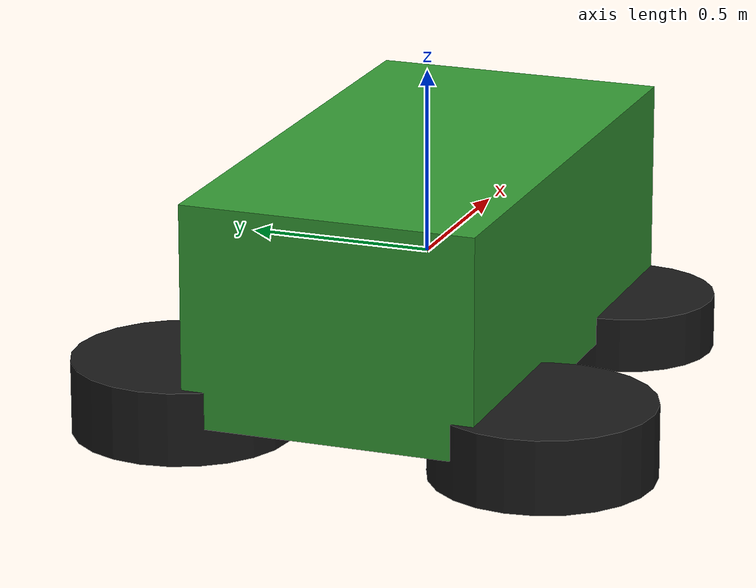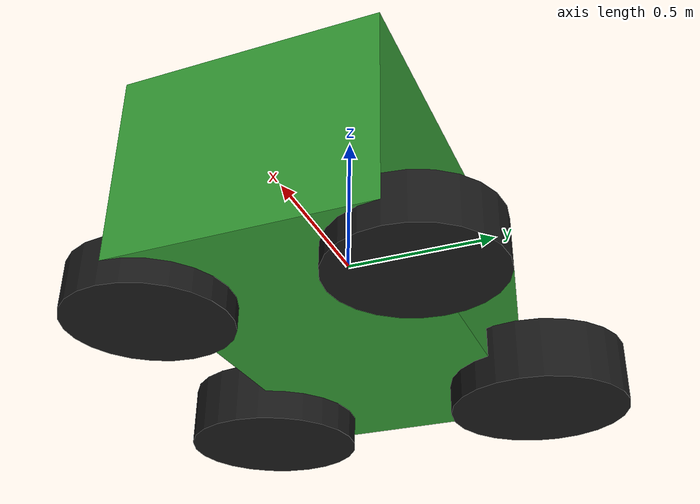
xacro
<?xml version="1.0"?>
<robot name="agri_robot" xmlns:xacro="http://ros.org/wiki/xacro">

  <!-- BASE LINK (Main body) -->
  <link name="base_link">
    <inertial>
      <mass value="50.0"/>
      <inertia ixx="4.167" ixy="0" ixz="0" iyy="7.5" iyz="0" izz="9.375"/>
    </inertial>

    <visual>
      <geometry>
        <box size="1.5 0.8 0.6"/>
      </geometry>
      <material name="green">
        <color rgba="0.2 0.6 0.2 1"/>
      </material>
    </visual>

    <collision>
      <geometry>
        <box size="1.5 0.8 0.6"/>
      </geometry>
    </collision>
  </link>

  <!-- REAR LEFT WHEEL -->
  <link name="rear_left_wheel">
    <inertial>
      <mass value="5.0"/>
      <inertia ixx="0.1125" ixy="0" ixz="0" iyy="0.1125" iyz="0" izz="0.225"/>
    </inertial>

    <visual>
      <geometry>
        <cylinder radius="0.3" length="0.2"/>
      </geometry>
      <material name="black">
        <color rgba="0.1 0.1 0.1 1"/>
      </material>
    </visual>

    <collision>
      <geometry>
        <cylinder radius="0.3" length="0.2"/>
      </geometry>
    </collision>
  </link>

  <joint name="rear_left_wheel_joint" type="continuous">
    <parent link="base_link"/>
    <child link="rear_left_wheel"/>
    <origin xyz="-0.5 0.5 -0.3" rpy="0 0 0"/>
    <axis xyz="0 1 0"/>
  </joint>

  <!-- REAR RIGHT WHEEL -->
  <link name="rear_right_wheel">
    <inertial>
      <mass value="5.0"/>
      <inertia ixx="0.1125" ixy="0" ixz="0" iyy="0.1125" iyz="0" izz="0.225"/>
    </inertial>

    <visual>
      <geometry>
        <cylinder radius="0.3" length="0.2"/>
      </geometry>
      <material name="black">
        <color rgba="0.1 0.1 0.1 1"/>
      </material>
    </visual>

    <collision>
      <geometry>
        <cylinder radius="0.3" length="0.2"/>
      </geometry>
    </collision>
  </link>

  <joint name="rear_right_wheel_joint" type="continuous">
    <parent link="base_link"/>
    <child link="rear_right_wheel"/>
    <origin xyz="-0.5 -0.5 -0.3" rpy="0 0 0"/>
    <axis xyz="0 1 0"/>
  </joint>

  <!-- FRONT LEFT WHEEL -->
  <link name="front_left_wheel">
    <inertial>
      <mass value="3.0"/>
      <inertia ixx="0.05625" ixy="0" ixz="0" iyy="0.05625" iyz="0" izz="0.1125"/>
    </inertial>

    <visual>
      <geometry>
        <cylinder radius="0.25" length="0.15"/>
      </geometry>
      <material name="black">
        <color rgba="0.1 0.1 0.1 1"/>
      </material>
    </visual>

    <collision>
      <geometry>
        <cylinder radius="0.25" length="0.15"/>
      </geometry>
    </collision>
  </link>

  <joint name="front_left_wheel_joint" type="continuous">
    <parent link="base_link"/>
    <child link="front_left_wheel"/>
    <origin xyz="0.5 0.4 -0.3" rpy="0 0 0"/>
    <axis xyz="0 1 0"/>
  </joint>

  <!-- FRONT RIGHT WHEEL -->
  <link name="front_right_wheel">
    <inertial>
      <mass value="3.0"/>
      <inertia ixx="0.05625" ixy="0" ixz="0" iyy="0.05625" iyz="0" izz="0.1125"/>
    </inertial>

    <visual>
      <geometry>
        <cylinder radius="0.25" length="0.15"/>
      </geometry>
      <material name="black">
        <color rgba="0.1 0.1 0.1 1"/>
      </material>
    </visual>

    <collision>
      <geometry>
        <cylinder radius="0.25" length="0.15"/>
      </geometry>
    </collision>
  </link>

  <joint name="front_right_wheel_joint" type="continuous">
    <parent link="base_link"/>
    <child link="front_right_wheel"/>
    <origin xyz="0.5 -0.4 -0.3" rpy="0 0 0"/>
    <axis xyz="0 1 0"/>
  </joint>

</robot>
